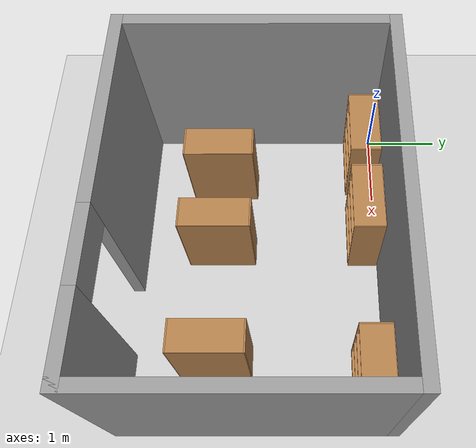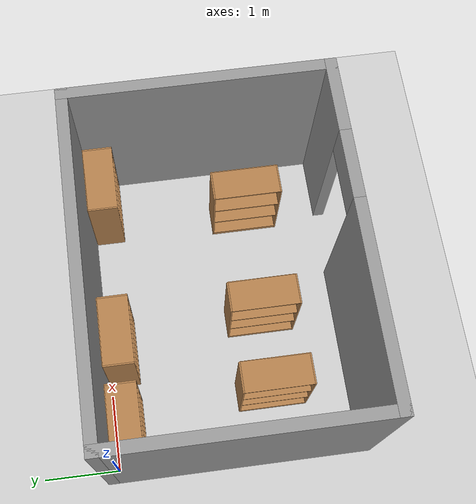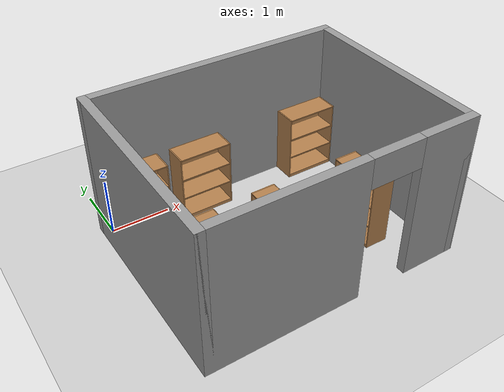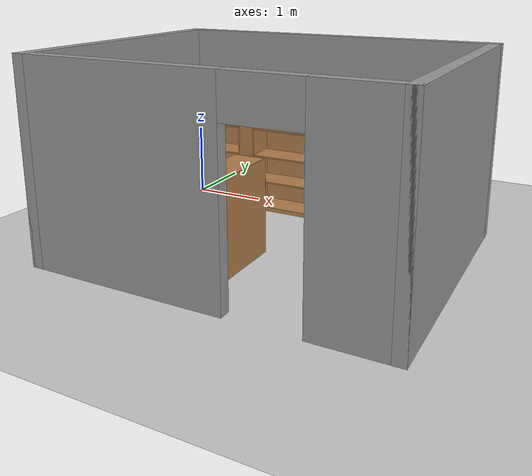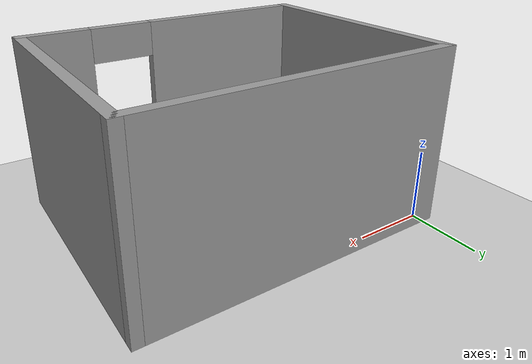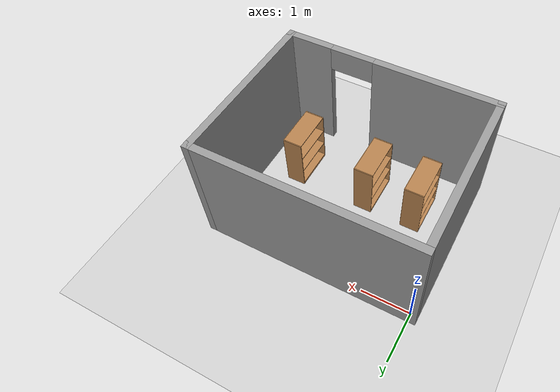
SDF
<sdf version="1.7">
 <world name="default">
  <light name="sun" type="directional">
   <pose>0 0 10 0 -0 0</pose>
   <diffuse>0.8 0.8 0.8 1</diffuse>
   <specular>0.2 0.2 0.2 1</specular>
   <attenuation>
    <range>1000</range>
    <constant>0.9</constant>
    <linear>0.01</linear>
    <quadratic>0.001</quadratic>
   </attenuation>
   <direction>-0.5 0.1 -0.9</direction>
   <spot><inner_angle>0</inner_angle><outer_angle>0</outer_angle><falloff>0</falloff></spot>
  </light>
  <model name="ground_plane">
   <static>1</static>
   <link name="link">
    <collision name="collision">
     <geometry><plane><normal>0 0 1</normal><size>100 100</size></plane></geometry>
     <surface><friction><ode><mu>100</mu><mu2>50</mu2></ode></friction></surface>
    </collision>
    <visual name="visual">
     <cast_shadows>0</cast_shadows>
     <geometry><plane><normal>0 0 1</normal><size>100 100</size></plane></geometry>
     <material>
      <script>
       <uri>file://install/models/media/materials/scripts/gazebo.material</uri>
       <name>Gazebo/Grey</name>
      </script>
     </material>
    </visual>
   </link>
  </model>
  <gravity>0 0 -9.8</gravity>
  <magnetic_field>6e-06 2.3e-05 -4.2e-05</magnetic_field>
  <atmosphere type="adiabatic"/>
  <physics type="ode">
   <max_step_size>0.001</max_step_size>
   <real_time_factor>1</real_time_factor>
   <real_time_update_rate>1000</real_time_update_rate>
  </physics>
  <scene><ambient>0.4 0.4 0.4 1</ambient><background>0.7 0.7 0.7 1</background><shadows>1</shadows></scene>
  <spherical_coordinates>
   <surface_model>EARTH_WGS84</surface_model>
   <latitude_deg>0</latitude_deg>
   <longitude_deg>0</longitude_deg>
   <elevation>0</elevation>
   <heading_deg>0</heading_deg>
  </spherical_coordinates>
  <model name="big_room">
   <pose>2.09211 0.167518 0 0 -0 0</pose>
   <link name="Wall_0">
    <collision name="Wall_0_Collision">
     <geometry><box><size>4.5 0.15 2.5</size></box></geometry>
     <pose>0 0 1.25 0 -0 0</pose>
    </collision>
    <visual name="Wall_0_Visual">
     <pose>0 0 1.25 0 -0 0</pose>
     <geometry><box><size>4.5 0.15 2.5</size></box></geometry>
     <material>
      <script>
       <uri>file://install/models/media/materials/scripts/gazebo.material</uri>
       <name>Gazebo/Grey</name>
      </script>
      <ambient>1 1 1 1</ambient>
     </material>
     <meta><layer>0</layer></meta>
    </visual>
    <pose>-0 -0.0775 0 0 -0 3.14159</pose>
   </link>
   <link name="Wall_1">
    <collision name="Wall_1_Collision">
     <geometry><box><size>3.5 0.15 2.5</size></box></geometry>
     <pose>0 0 1.25 0 -0 0</pose>
    </collision>
    <visual name="Wall_1_Visual">
     <pose>0 0 1.25 0 -0 0</pose>
     <geometry><box><size>3.5 0.15 2.5</size></box></geometry>
     <material>
      <script>
       <uri>file://install/models/media/materials/scripts/gazebo.material</uri>
       <name>Gazebo/Grey</name>
      </script>
      <ambient>1 1 1 1</ambient>
     </material>
     <meta><layer>0</layer></meta>
    </visual>
    <pose>-2.175 -1.7525 0 0 -0 -1.5708</pose>
   </link>
   <link name="Wall_2">
    <pose>-0 -3.4275 0 0 -0 0</pose>
    <visual name="Wall_2_Visual_0">
     <pose>-0.955729 0 1.25 0 -0 0</pose>
     <geometry><box><size>2.58854 0.15 2.5</size></box></geometry>
     <material>
      <script>
       <uri>file://install/models/media/materials/scripts/gazebo.material</uri>
       <name>Gazebo/Grey</name>
      </script>
      <ambient>1 1 1 1</ambient>
     </material>
     <meta><layer>0</layer></meta>
    </visual>
    <collision name="Wall_2_Collision_0">
     <geometry><box><size>2.58854 0.15 2.5</size></box></geometry>
     <pose>-0.955729 0 1.25 0 -0 0</pose>
    </collision>
    <visual name="Wall_2_Visual_1">
     <pose>1.74427 0 1.25 0 -0 0</pose>
     <geometry><box><size>1.01146 0.15 2.5</size></box></geometry>
     <material>
      <script>
       <uri>file://install/models/media/materials/scripts/gazebo.material</uri>
       <name>Gazebo/Grey</name>
      </script>
      <ambient>1 1 1 1</ambient>
     </material>
     <meta><layer>0</layer></meta>
    </visual>
    <collision name="Wall_2_Collision_1">
     <geometry><box><size>1.01146 0.15 2.5</size></box></geometry>
     <pose>1.74427 0 1.25 0 -0 0</pose>
    </collision>
    <visual name="Wall_2_Visual_2">
     <pose>0.788542 0 2.25 0 -0 0</pose>
     <geometry><box><size>0.9 0.15 0.5</size></box></geometry>
     <material>
      <script>
       <uri>file://install/models/media/materials/scripts/gazebo.material</uri>
       <name>Gazebo/Grey</name>
      </script>
      <ambient>1 1 1 1</ambient>
     </material>
     <meta><layer>0</layer></meta>
    </visual>
    <collision name="Wall_2_Collision_2">
     <geometry><box><size>0.9 0.15 0.5</size></box></geometry>
     <pose>0.788542 0 2.25 0 -0 0</pose>
    </collision>
   </link>
   <link name="Wall_3">
    <collision name="Wall_3_Collision">
     <geometry><box><size>3.5 0.15 2.5</size></box></geometry>
     <pose>0 0 1.25 0 -0 0</pose>
    </collision>
    <visual name="Wall_3_Visual">
     <pose>0 0 1.25 0 -0 0</pose>
     <geometry><box><size>3.5 0.15 2.5</size></box></geometry>
     <material>
      <script>
       <uri>file://install/models/media/materials/scripts/gazebo.material</uri>
       <name>Gazebo/Grey</name>
      </script>
      <ambient>1 1 1 1</ambient>
     </material>
     <meta><layer>0</layer></meta>
    </visual>
    <pose>2.175 -1.7525 0 0 -0 1.5708</pose>
   </link>
   <static>1</static>
  </model>
  <model name="bookshelf">
   <static>1</static>
   <link name="link">
    <inertial><mass>1</mass></inertial>
    <collision name="back">
     <pose>0 0.005 0.6 0 -0 0</pose>
     <geometry><box><size>0.9 0.01 1.2</size></box></geometry>
    </collision>
    <visual name="visual1">
     <pose>0 0.005 0.6 0 -0 0</pose>
     <geometry><box><size>0.9 0.01 1.2</size></box></geometry>
     <material>
      <script>
       <uri>file://install/models/media/materials/scripts/gazebo.material</uri>
       <name>Gazebo/Wood</name>
      </script>
     </material>
    </visual>
    <collision name="left_side">
     <pose>0.45 -0.195 0.6 0 -0 0</pose>
     <geometry><box><size>0.02 0.4 1.2</size></box></geometry>
    </collision>
    <visual name="visual2">
     <pose>0.45 -0.195 0.6 0 -0 0</pose>
     <geometry><box><size>0.02 0.4 1.2</size></box></geometry>
     <material>
      <script>
       <uri>file://install/models/media/materials/scripts/gazebo.material</uri>
       <name>Gazebo/Wood</name>
      </script>
     </material>
    </visual>
    <collision name="right_side">
     <pose>-0.45 -0.195 0.6 0 -0 0</pose>
     <geometry><box><size>0.02 0.4 1.2</size></box></geometry>
    </collision>
    <visual name="visual3">
     <pose>-0.45 -0.195 0.6 0 -0 0</pose>
     <geometry><box><size>0.02 0.4 1.2</size></box></geometry>
     <material>
      <script>
       <uri>file://install/models/media/materials/scripts/gazebo.material</uri>
       <name>Gazebo/Wood</name>
      </script>
     </material>
    </visual>
    <collision name="bottom">
     <pose>0 -0.195 0.03 0 -0 0</pose>
     <geometry><box><size>0.88 0.4 0.06</size></box></geometry>
    </collision>
    <visual name="visual4">
     <pose>0 -0.195 0.03 0 -0 0</pose>
     <geometry><box><size>0.88 0.4 0.06</size></box></geometry>
     <material>
      <script>
       <uri>file://install/models/media/materials/scripts/gazebo.material</uri>
       <name>Gazebo/Wood</name>
      </script>
     </material>
    </visual>
    <collision name="top">
     <pose>0 -0.195 1.19 0 -0 0</pose>
     <geometry><box><size>0.88 0.4 0.02</size></box></geometry>
    </collision>
    <visual name="visual5">
     <pose>0 -0.195 1.19 0 -0 0</pose>
     <geometry><box><size>0.88 0.4 0.02</size></box></geometry>
     <material>
      <script>
       <uri>file://install/models/media/materials/scripts/gazebo.material</uri>
       <name>Gazebo/Wood</name>
      </script>
     </material>
    </visual>
    <collision name="low_shelf">
     <pose>0 -0.195 0.43 0 -0 0</pose>
     <geometry><box><size>0.88 0.4 0.02</size></box></geometry>
    </collision>
    <visual name="visual6">
     <pose>0 -0.195 0.43 0 -0 0</pose>
     <geometry><box><size>0.88 0.4 0.02</size></box></geometry>
     <material>
      <script>
       <uri>file://install/models/media/materials/scripts/gazebo.material</uri>
       <name>Gazebo/Wood</name>
      </script>
     </material>
    </visual>
    <collision name="high_shelf">
     <pose>0 -0.195 0.8 0 -0 0</pose>
     <geometry><box><size>0.88 0.4 0.02</size></box></geometry>
    </collision>
    <visual name="visual7">
     <pose>0 -0.195 0.8 0 -0 0</pose>
     <geometry><box><size>0.88 0.4 0.02</size></box></geometry>
     <material>
      <script>
       <uri>file://install/models/media/materials/scripts/gazebo.material</uri>
       <name>Gazebo/Wood</name>
      </script>
     </material>
    </visual>
   </link>
   <pose>0.456942 0.005616 0 0 -0 0</pose>
  </model>
  <model name="bookshelf_clone">
   <static>1</static>
   <link name="link">
    <inertial><mass>1</mass></inertial>
    <collision name="back">
     <pose>0 0.005 0.6 0 -0 0</pose>
     <geometry><box><size>0.9 0.01 1.2</size></box></geometry>
    </collision>
    <visual name="visual1">
     <pose>0 0.005 0.6 0 -0 0</pose>
     <geometry><box><size>0.9 0.01 1.2</size></box></geometry>
     <material>
      <script>
       <uri>file://install/models/media/materials/scripts/gazebo.material</uri>
       <name>Gazebo/Wood</name>
      </script>
     </material>
    </visual>
    <collision name="left_side">
     <pose>0.45 -0.195 0.6 0 -0 0</pose>
     <geometry><box><size>0.02 0.4 1.2</size></box></geometry>
    </collision>
    <visual name="visual2">
     <pose>0.45 -0.195 0.6 0 -0 0</pose>
     <geometry><box><size>0.02 0.4 1.2</size></box></geometry>
     <material>
      <script>
       <uri>file://install/models/media/materials/scripts/gazebo.material</uri>
       <name>Gazebo/Wood</name>
      </script>
     </material>
    </visual>
    <collision name="right_side">
     <pose>-0.45 -0.195 0.6 0 -0 0</pose>
     <geometry><box><size>0.02 0.4 1.2</size></box></geometry>
    </collision>
    <visual name="visual3">
     <pose>-0.45 -0.195 0.6 0 -0 0</pose>
     <geometry><box><size>0.02 0.4 1.2</size></box></geometry>
     <material>
      <script>
       <uri>file://install/models/media/materials/scripts/gazebo.material</uri>
       <name>Gazebo/Wood</name>
      </script>
     </material>
    </visual>
    <collision name="bottom">
     <pose>0 -0.195 0.03 0 -0 0</pose>
     <geometry><box><size>0.88 0.4 0.06</size></box></geometry>
    </collision>
    <visual name="visual4">
     <pose>0 -0.195 0.03 0 -0 0</pose>
     <geometry><box><size>0.88 0.4 0.06</size></box></geometry>
     <material>
      <script>
       <uri>file://install/models/media/materials/scripts/gazebo.material</uri>
       <name>Gazebo/Wood</name>
      </script>
     </material>
    </visual>
    <collision name="top">
     <pose>0 -0.195 1.19 0 -0 0</pose>
     <geometry><box><size>0.88 0.4 0.02</size></box></geometry>
    </collision>
    <visual name="visual5">
     <pose>0 -0.195 1.19 0 -0 0</pose>
     <geometry><box><size>0.88 0.4 0.02</size></box></geometry>
     <material>
      <script>
       <uri>file://install/models/media/materials/scripts/gazebo.material</uri>
       <name>Gazebo/Wood</name>
      </script>
     </material>
    </visual>
    <collision name="low_shelf">
     <pose>0 -0.195 0.43 0 -0 0</pose>
     <geometry><box><size>0.88 0.4 0.02</size></box></geometry>
    </collision>
    <visual name="visual6">
     <pose>0 -0.195 0.43 0 -0 0</pose>
     <geometry><box><size>0.88 0.4 0.02</size></box></geometry>
     <material>
      <script>
       <uri>file://install/models/media/materials/scripts/gazebo.material</uri>
       <name>Gazebo/Wood</name>
      </script>
     </material>
    </visual>
    <collision name="high_shelf">
     <pose>0 -0.195 0.8 0 -0 0</pose>
     <geometry><box><size>0.88 0.4 0.02</size></box></geometry>
    </collision>
    <visual name="visual7">
     <pose>0 -0.195 0.8 0 -0 0</pose>
     <geometry><box><size>0.88 0.4 0.02</size></box></geometry>
     <material>
      <script>
       <uri>file://install/models/media/materials/scripts/gazebo.material</uri>
       <name>Gazebo/Wood</name>
      </script>
     </material>
    </visual>
   </link>
   <pose>1.59168 0.001869 0 0 -0 0</pose>
  </model>
  <model name="bookshelf_clone_0">
   <static>1</static>
   <link name="link">
    <inertial><mass>1</mass></inertial>
    <collision name="back">
     <pose>0 0.005 0.6 0 -0 0</pose>
     <geometry><box><size>0.9 0.01 1.2</size></box></geometry>
    </collision>
    <visual name="visual1">
     <pose>0 0.005 0.6 0 -0 0</pose>
     <geometry><box><size>0.9 0.01 1.2</size></box></geometry>
     <material>
      <script>
       <uri>file://install/models/media/materials/scripts/gazebo.material</uri>
       <name>Gazebo/Wood</name>
      </script>
     </material>
    </visual>
    <collision name="left_side">
     <pose>0.45 -0.195 0.6 0 -0 0</pose>
     <geometry><box><size>0.02 0.4 1.2</size></box></geometry>
    </collision>
    <visual name="visual2">
     <pose>0.45 -0.195 0.6 0 -0 0</pose>
     <geometry><box><size>0.02 0.4 1.2</size></box></geometry>
     <material>
      <script>
       <uri>file://install/models/media/materials/scripts/gazebo.material</uri>
       <name>Gazebo/Wood</name>
      </script>
     </material>
    </visual>
    <collision name="right_side">
     <pose>-0.45 -0.195 0.6 0 -0 0</pose>
     <geometry><box><size>0.02 0.4 1.2</size></box></geometry>
    </collision>
    <visual name="visual3">
     <pose>-0.45 -0.195 0.6 0 -0 0</pose>
     <geometry><box><size>0.02 0.4 1.2</size></box></geometry>
     <material>
      <script>
       <uri>file://install/models/media/materials/scripts/gazebo.material</uri>
       <name>Gazebo/Wood</name>
      </script>
     </material>
    </visual>
    <collision name="bottom">
     <pose>0 -0.195 0.03 0 -0 0</pose>
     <geometry><box><size>0.88 0.4 0.06</size></box></geometry>
    </collision>
    <visual name="visual4">
     <pose>0 -0.195 0.03 0 -0 0</pose>
     <geometry><box><size>0.88 0.4 0.06</size></box></geometry>
     <material>
      <script>
       <uri>file://install/models/media/materials/scripts/gazebo.material</uri>
       <name>Gazebo/Wood</name>
      </script>
     </material>
    </visual>
    <collision name="top">
     <pose>0 -0.195 1.19 0 -0 0</pose>
     <geometry><box><size>0.88 0.4 0.02</size></box></geometry>
    </collision>
    <visual name="visual5">
     <pose>0 -0.195 1.19 0 -0 0</pose>
     <geometry><box><size>0.88 0.4 0.02</size></box></geometry>
     <material>
      <script>
       <uri>file://install/models/media/materials/scripts/gazebo.material</uri>
       <name>Gazebo/Wood</name>
      </script>
     </material>
    </visual>
    <collision name="low_shelf">
     <pose>0 -0.195 0.43 0 -0 0</pose>
     <geometry><box><size>0.88 0.4 0.02</size></box></geometry>
    </collision>
    <visual name="visual6">
     <pose>0 -0.195 0.43 0 -0 0</pose>
     <geometry><box><size>0.88 0.4 0.02</size></box></geometry>
     <material>
      <script>
       <uri>file://install/models/media/materials/scripts/gazebo.material</uri>
       <name>Gazebo/Wood</name>
      </script>
     </material>
    </visual>
    <collision name="high_shelf">
     <pose>0 -0.195 0.8 0 -0 0</pose>
     <geometry><box><size>0.88 0.4 0.02</size></box></geometry>
    </collision>
    <visual name="visual7">
     <pose>0 -0.195 0.8 0 -0 0</pose>
     <geometry><box><size>0.88 0.4 0.02</size></box></geometry>
     <material>
      <script>
       <uri>file://install/models/media/materials/scripts/gazebo.material</uri>
       <name>Gazebo/Wood</name>
      </script>
     </material>
    </visual>
   </link>
   <pose>3.72767 0.00608 0 0 -0 0</pose>
  </model>
  <model name="bookshelf_clone_1">
   <static>1</static>
   <link name="link">
    <inertial><mass>1</mass></inertial>
    <collision name="back">
     <pose>0 0.005 0.6 0 -0 0</pose>
     <geometry><box><size>0.9 0.01 1.2</size></box></geometry>
    </collision>
    <visual name="visual1">
     <pose>0 0.005 0.6 0 -0 0</pose>
     <geometry><box><size>0.9 0.01 1.2</size></box></geometry>
     <material>
      <script>
       <uri>file://install/models/media/materials/scripts/gazebo.material</uri>
       <name>Gazebo/Wood</name>
      </script>
     </material>
    </visual>
    <collision name="left_side">
     <pose>0.45 -0.195 0.6 0 -0 0</pose>
     <geometry><box><size>0.02 0.4 1.2</size></box></geometry>
    </collision>
    <visual name="visual2">
     <pose>0.45 -0.195 0.6 0 -0 0</pose>
     <geometry><box><size>0.02 0.4 1.2</size></box></geometry>
     <material>
      <script>
       <uri>file://install/models/media/materials/scripts/gazebo.material</uri>
       <name>Gazebo/Wood</name>
      </script>
     </material>
    </visual>
    <collision name="right_side">
     <pose>-0.45 -0.195 0.6 0 -0 0</pose>
     <geometry><box><size>0.02 0.4 1.2</size></box></geometry>
    </collision>
    <visual name="visual3">
     <pose>-0.45 -0.195 0.6 0 -0 0</pose>
     <geometry><box><size>0.02 0.4 1.2</size></box></geometry>
     <material>
      <script>
       <uri>file://install/models/media/materials/scripts/gazebo.material</uri>
       <name>Gazebo/Wood</name>
      </script>
     </material>
    </visual>
    <collision name="bottom">
     <pose>0 -0.195 0.03 0 -0 0</pose>
     <geometry><box><size>0.88 0.4 0.06</size></box></geometry>
    </collision>
    <visual name="visual4">
     <pose>0 -0.195 0.03 0 -0 0</pose>
     <geometry><box><size>0.88 0.4 0.06</size></box></geometry>
     <material>
      <script>
       <uri>file://install/models/media/materials/scripts/gazebo.material</uri>
       <name>Gazebo/Wood</name>
      </script>
     </material>
    </visual>
    <collision name="top">
     <pose>0 -0.195 1.19 0 -0 0</pose>
     <geometry><box><size>0.88 0.4 0.02</size></box></geometry>
    </collision>
    <visual name="visual5">
     <pose>0 -0.195 1.19 0 -0 0</pose>
     <geometry><box><size>0.88 0.4 0.02</size></box></geometry>
     <material>
      <script>
       <uri>file://install/models/media/materials/scripts/gazebo.material</uri>
       <name>Gazebo/Wood</name>
      </script>
     </material>
    </visual>
    <collision name="low_shelf">
     <pose>0 -0.195 0.43 0 -0 0</pose>
     <geometry><box><size>0.88 0.4 0.02</size></box></geometry>
    </collision>
    <visual name="visual6">
     <pose>0 -0.195 0.43 0 -0 0</pose>
     <geometry><box><size>0.88 0.4 0.02</size></box></geometry>
     <material>
      <script>
       <uri>file://install/models/media/materials/scripts/gazebo.material</uri>
       <name>Gazebo/Wood</name>
      </script>
     </material>
    </visual>
    <collision name="high_shelf">
     <pose>0 -0.195 0.8 0 -0 0</pose>
     <geometry><box><size>0.88 0.4 0.02</size></box></geometry>
    </collision>
    <visual name="visual7">
     <pose>0 -0.195 0.8 0 -0 0</pose>
     <geometry><box><size>0.88 0.4 0.02</size></box></geometry>
     <material>
      <script>
       <uri>file://install/models/media/materials/scripts/gazebo.material</uri>
       <name>Gazebo/Wood</name>
      </script>
     </material>
    </visual>
   </link>
   <pose>0.975444 -2.13702 0 0 0 -1.56945</pose>
  </model>
  <model name="bookshelf_clone_1_clone">
   <static>1</static>
   <link name="link">
    <inertial><mass>1</mass></inertial>
    <collision name="back">
     <pose>0 0.005 0.6 0 -0 0</pose>
     <geometry><box><size>0.9 0.01 1.2</size></box></geometry>
    </collision>
    <visual name="visual1">
     <pose>0 0.005 0.6 0 -0 0</pose>
     <geometry><box><size>0.9 0.01 1.2</size></box></geometry>
     <material>
      <script>
       <uri>file://install/models/media/materials/scripts/gazebo.material</uri>
       <name>Gazebo/Wood</name>
      </script>
     </material>
    </visual>
    <collision name="left_side">
     <pose>0.45 -0.195 0.6 0 -0 0</pose>
     <geometry><box><size>0.02 0.4 1.2</size></box></geometry>
    </collision>
    <visual name="visual2">
     <pose>0.45 -0.195 0.6 0 -0 0</pose>
     <geometry><box><size>0.02 0.4 1.2</size></box></geometry>
     <material>
      <script>
       <uri>file://install/models/media/materials/scripts/gazebo.material</uri>
       <name>Gazebo/Wood</name>
      </script>
     </material>
    </visual>
    <collision name="right_side">
     <pose>-0.45 -0.195 0.6 0 -0 0</pose>
     <geometry><box><size>0.02 0.4 1.2</size></box></geometry>
    </collision>
    <visual name="visual3">
     <pose>-0.45 -0.195 0.6 0 -0 0</pose>
     <geometry><box><size>0.02 0.4 1.2</size></box></geometry>
     <material>
      <script>
       <uri>file://install/models/media/materials/scripts/gazebo.material</uri>
       <name>Gazebo/Wood</name>
      </script>
     </material>
    </visual>
    <collision name="bottom">
     <pose>0 -0.195 0.03 0 -0 0</pose>
     <geometry><box><size>0.88 0.4 0.06</size></box></geometry>
    </collision>
    <visual name="visual4">
     <pose>0 -0.195 0.03 0 -0 0</pose>
     <geometry><box><size>0.88 0.4 0.06</size></box></geometry>
     <material>
      <script>
       <uri>file://install/models/media/materials/scripts/gazebo.material</uri>
       <name>Gazebo/Wood</name>
      </script>
     </material>
    </visual>
    <collision name="top">
     <pose>0 -0.195 1.19 0 -0 0</pose>
     <geometry><box><size>0.88 0.4 0.02</size></box></geometry>
    </collision>
    <visual name="visual5">
     <pose>0 -0.195 1.19 0 -0 0</pose>
     <geometry><box><size>0.88 0.4 0.02</size></box></geometry>
     <material>
      <script>
       <uri>file://install/models/media/materials/scripts/gazebo.material</uri>
       <name>Gazebo/Wood</name>
      </script>
     </material>
    </visual>
    <collision name="low_shelf">
     <pose>0 -0.195 0.43 0 -0 0</pose>
     <geometry><box><size>0.88 0.4 0.02</size></box></geometry>
    </collision>
    <visual name="visual6">
     <pose>0 -0.195 0.43 0 -0 0</pose>
     <geometry><box><size>0.88 0.4 0.02</size></box></geometry>
     <material>
      <script>
       <uri>file://install/models/media/materials/scripts/gazebo.material</uri>
       <name>Gazebo/Wood</name>
      </script>
     </material>
    </visual>
    <collision name="high_shelf">
     <pose>0 -0.195 0.8 0 -0 0</pose>
     <geometry><box><size>0.88 0.4 0.02</size></box></geometry>
    </collision>
    <visual name="visual7">
     <pose>0 -0.195 0.8 0 -0 0</pose>
     <geometry><box><size>0.88 0.4 0.02</size></box></geometry>
     <material>
      <script>
       <uri>file://install/models/media/materials/scripts/gazebo.material</uri>
       <name>Gazebo/Wood</name>
      </script>
     </material>
    </visual>
   </link>
   <pose>2.03281 -2.13466 0 0 0 -1.56945</pose>
  </model>
  <model name="bookshelf_clone_1_clone_0">
   <static>1</static>
   <link name="link">
    <inertial><mass>1</mass></inertial>
    <collision name="back">
     <pose>0 0.005 0.6 0 -0 0</pose>
     <geometry><box><size>0.9 0.01 1.2</size></box></geometry>
    </collision>
    <visual name="visual1">
     <pose>0 0.005 0.6 0 -0 0</pose>
     <geometry><box><size>0.9 0.01 1.2</size></box></geometry>
     <material>
      <script>
       <uri>file://install/models/media/materials/scripts/gazebo.material</uri>
       <name>Gazebo/Wood</name>
      </script>
     </material>
    </visual>
    <collision name="left_side">
     <pose>0.45 -0.195 0.6 0 -0 0</pose>
     <geometry><box><size>0.02 0.4 1.2</size></box></geometry>
    </collision>
    <visual name="visual2">
     <pose>0.45 -0.195 0.6 0 -0 0</pose>
     <geometry><box><size>0.02 0.4 1.2</size></box></geometry>
     <material>
      <script>
       <uri>file://install/models/media/materials/scripts/gazebo.material</uri>
       <name>Gazebo/Wood</name>
      </script>
     </material>
    </visual>
    <collision name="right_side">
     <pose>-0.45 -0.195 0.6 0 -0 0</pose>
     <geometry><box><size>0.02 0.4 1.2</size></box></geometry>
    </collision>
    <visual name="visual3">
     <pose>-0.45 -0.195 0.6 0 -0 0</pose>
     <geometry><box><size>0.02 0.4 1.2</size></box></geometry>
     <material>
      <script>
       <uri>file://install/models/media/materials/scripts/gazebo.material</uri>
       <name>Gazebo/Wood</name>
      </script>
     </material>
    </visual>
    <collision name="bottom">
     <pose>0 -0.195 0.03 0 -0 0</pose>
     <geometry><box><size>0.88 0.4 0.06</size></box></geometry>
    </collision>
    <visual name="visual4">
     <pose>0 -0.195 0.03 0 -0 0</pose>
     <geometry><box><size>0.88 0.4 0.06</size></box></geometry>
     <material>
      <script>
       <uri>file://install/models/media/materials/scripts/gazebo.material</uri>
       <name>Gazebo/Wood</name>
      </script>
     </material>
    </visual>
    <collision name="top">
     <pose>0 -0.195 1.19 0 -0 0</pose>
     <geometry><box><size>0.88 0.4 0.02</size></box></geometry>
    </collision>
    <visual name="visual5">
     <pose>0 -0.195 1.19 0 -0 0</pose>
     <geometry><box><size>0.88 0.4 0.02</size></box></geometry>
     <material>
      <script>
       <uri>file://install/models/media/materials/scripts/gazebo.material</uri>
       <name>Gazebo/Wood</name>
      </script>
     </material>
    </visual>
    <collision name="low_shelf">
     <pose>0 -0.195 0.43 0 -0 0</pose>
     <geometry><box><size>0.88 0.4 0.02</size></box></geometry>
    </collision>
    <visual name="visual6">
     <pose>0 -0.195 0.43 0 -0 0</pose>
     <geometry><box><size>0.88 0.4 0.02</size></box></geometry>
     <material>
      <script>
       <uri>file://install/models/media/materials/scripts/gazebo.material</uri>
       <name>Gazebo/Wood</name>
      </script>
     </material>
    </visual>
    <collision name="high_shelf">
     <pose>0 -0.195 0.8 0 -0 0</pose>
     <geometry><box><size>0.88 0.4 0.02</size></box></geometry>
    </collision>
    <visual name="visual7">
     <pose>0 -0.195 0.8 0 -0 0</pose>
     <geometry><box><size>0.88 0.4 0.02</size></box></geometry>
     <material>
      <script>
       <uri>file://install/models/media/materials/scripts/gazebo.material</uri>
       <name>Gazebo/Wood</name>
      </script>
     </material>
    </visual>
   </link>
   <pose>3.617 -2.13525 0 0 0 -1.56945</pose>
  </model>
 </world>
</sdf>
